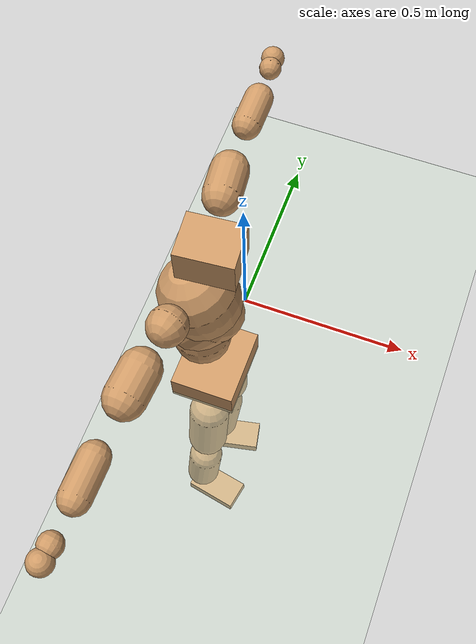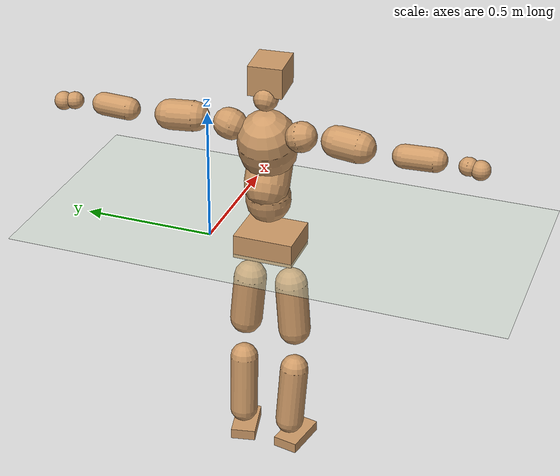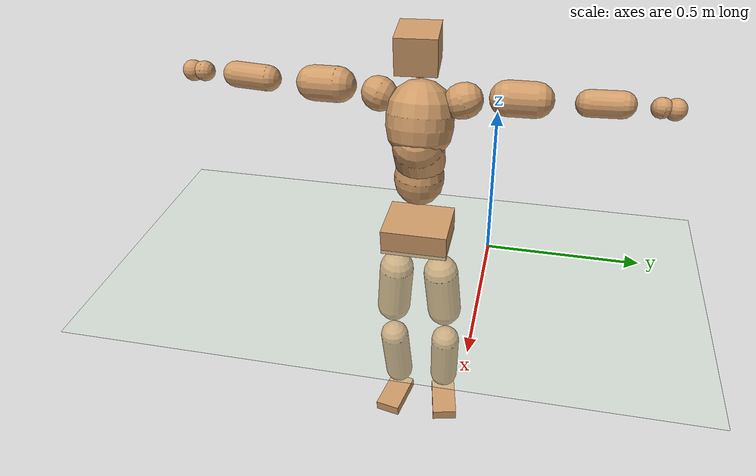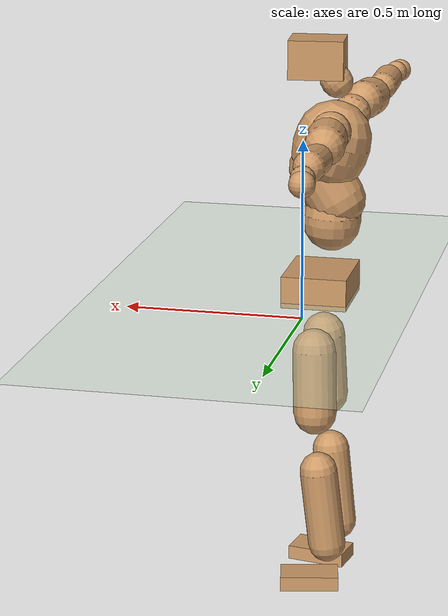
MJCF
<mujoco model="humanoid">
  <compiler coordinate="local" angle="radian"/>
  <default>
    <joint damping="0.0" armature="0.01" stiffness="0.0" limited="true"/>
    <geom conaffinity="1" condim="3" contype="7" margin="0.001" rgba="0.8 0.6 .4 1"/>
  </default>
  <asset>
    <texture type="skybox" builtin="gradient" rgb1=".4 .5 .6" rgb2="0 0 0" width="100" height="100"/>
    <texture builtin="flat" height="1278" mark="cross" markrgb="1 1 1" name="texgeom" random="0.01" rgb1="0.8 0.6 0.4" rgb2="0.8 0.6 0.4" type="cube" width="127"/>
    <texture builtin="checker" height="100" name="texplane" rgb1="0 0 0" rgb2="0.8 0.8 0.8" type="2d" width="100"/>
    <material name="MatPlane" reflectance="0.5" shininess="1" specular="1" texrepeat="60 60" texture="texplane"/>
    <material name="geom" texture="texgeom" texuniform="true"/>
  </asset>
  <worldbody>
    <light cutoff="100" diffuse="1 1 1" dir="-0 0 -1.3" directional="true" exponent="1" pos="0 0 1.3" specular=".1 .1 .1"/>
    <geom conaffinity="1" condim="3" name="floor" pos="0 0 0" rgba="0.8 0.9 0.8 1" size="100 100 .2" type="plane" material="MatPlane"/>
    <body name="Pelvis" pos="0.0003 -0.2436 0.0425">
      <freejoint name="Pelvis"/>
      <geom type="box" contype="1" conaffinity="1" density="5359.374851" pos="-0.0051 -0.0000 -0.0132" size="0.0931 0.1124 0.0453" quat="1.0000 0.0000 0.0000 0.0008" name="Pelvis"/>
      <body name="L_Hip" pos="-0.0002 0.0746 -0.0961">
        <joint name="L_Hip_x" type="hinge" pos="0 0 0" axis="1 0 0" stiffness="1600" damping="160" armature="0.02" range="-180.0000 180.0000"/>
        <joint name="L_Hip_y" type="hinge" pos="0 0 0" axis="0 1 0" stiffness="1600" damping="160" armature="0.02" range="-180.0000 180.0000"/>
        <joint name="L_Hip_z" type="hinge" pos="0 0 0" axis="0 0 1" stiffness="1600" damping="160" armature="0.02" range="-180.0000 180.0000"/>
        <geom type="capsule" contype="1" conaffinity="1" density="2040.816327" size="0.0618" fromto="-0.0033 0.0072 -0.0915 -0.0099 0.0218 -0.2757" name="L_Hip"/>
        <body name="L_Knee" pos="-0.0132 0.0291 -0.3672">
          <joint name="L_Knee_x" type="hinge" pos="0 0 0" axis="1 0 0" stiffness="1600" damping="160" armature="0.02" range="-180.0000 180.0000"/>
          <joint name="L_Knee_y" type="hinge" pos="0 0 0" axis="0 1 0" stiffness="1600" damping="160" armature="0.02" range="-180.0000 180.0000"/>
          <joint name="L_Knee_z" type="hinge" pos="0 0 0" axis="0 0 1" stiffness="1600" damping="160" armature="0.02" range="-180.0000 180.0000"/>
          <geom type="capsule" contype="1" conaffinity="1" density="1234.567901" size="0.0539" fromto="-0.0093 -0.0025 -0.0833 -0.0348 -0.0094 -0.3101" name="L_Knee"/>
          <body name="L_Ankle" pos="-0.0441 -0.0119 -0.3935">
            <joint name="L_Ankle_x" type="hinge" pos="0 0 0" axis="1 0 0" stiffness="1600" damping="160" armature="0.02" range="-180.0000 180.0000"/>
            <joint name="L_Ankle_y" type="hinge" pos="0 0 0" axis="0 1 0" stiffness="1600" damping="160" armature="0.02" range="-180.0000 180.0000"/>
            <joint name="L_Ankle_z" type="hinge" pos="0 0 0" axis="0 0 1" stiffness="1600" damping="160" armature="0.02" range="-180.0000 180.0000"/>
            <geom type="box" contype="1" conaffinity="1" density="1000.000026" pos="0.0593 0.0125 -0.0287" size="0.0842 0.0474 0.0211" quat="0.9946 0.0000 0.0000 0.1038" name="L_Ankle"/>
            <body name="L_Toe" pos="0.1185 0.025 -0.0574">
              <joint name="L_Toe_x" type="hinge" pos="0 0 0" axis="1 0 0" stiffness="1000" damping="100" armature="0.02" range="-180.0000 180.0000"/>
              <joint name="L_Toe_y" type="hinge" pos="0 0 0" axis="0 1 0" stiffness="1000" damping="100" armature="0.02" range="-180.0000 180.0000"/>
              <joint name="L_Toe_z" type="hinge" pos="0 0 0" axis="0 0 1" stiffness="1000" damping="100" armature="0.02" range="-180.0000 180.0000"/>
              <geom type="box" contype="1" conaffinity="1" density="8358731.800534" pos="0.0000 0.0000 0.0282" size="0.001 0.0024 0.001" quat="0.9939 0.0000 0.0000 0.1100" name="L_Toe"/>
            </body>
          </body>
        </body>
      </body>
      <body name="R_Hip" pos="0.0028 -0.0712 -0.0965">
        <joint name="R_Hip_x" type="hinge" pos="0 0 0" axis="1 0 0" stiffness="1600" damping="160" armature="0.02" range="-180.0000 180.0000"/>
        <joint name="R_Hip_y" type="hinge" pos="0 0 0" axis="0 1 0" stiffness="1600" damping="160" armature="0.02" range="-180.0000 180.0000"/>
        <joint name="R_Hip_z" type="hinge" pos="0 0 0" axis="0 0 1" stiffness="1600" damping="160" armature="0.02" range="-180.0000 180.0000"/>
        <geom type="capsule" contype="1" conaffinity="1" density="2040.816327" size="0.061" fromto="-0.0035 -0.0086 -0.0906 -0.0111 -0.0268 -0.2841" name="R_Hip"/>
        <body name="R_Knee" pos="-0.0147 -0.0354 -0.3746">
          <joint name="R_Knee_x" type="hinge" pos="0 0 0" axis="1 0 0" stiffness="1600" damping="160" armature="0.02" range="-180.0000 180.0000"/>
          <joint name="R_Knee_y" type="hinge" pos="0 0 0" axis="0 1 0" stiffness="1600" damping="160" armature="0.02" range="-180.0000 180.0000"/>
          <joint name="R_Knee_z" type="hinge" pos="0 0 0" axis="0 0 1" stiffness="1600" damping="160" armature="0.02" range="-180.0000 180.0000"/>
          <geom type="capsule" contype="1" conaffinity="1" density="1234.567901" size="0.0542" fromto="-0.0091 0.0030 -0.0836 -0.0338 0.0113 -0.3113" name="R_Knee"/>
          <body name="R_Ankle" pos="-0.0429 0.0144 -0.3949">
            <joint name="R_Ankle_x" type="hinge" pos="0 0 0" axis="1 0 0" stiffness="1600" damping="160" armature="0.02" range="-180.0000 180.0000"/>
            <joint name="R_Ankle_y" type="hinge" pos="0 0 0" axis="0 1 0" stiffness="1600" damping="160" armature="0.02" range="-180.0000 180.0000"/>
            <joint name="R_Ankle_z" type="hinge" pos="0 0 0" axis="0 0 1" stiffness="1600" damping="160" armature="0.02" range="-180.0000 180.0000"/>
            <geom type="box" contype="1" conaffinity="1" density="999.999954" pos="0.0612 -0.0115 -0.0239" size="0.0858 0.048 0.0206" quat="0.9957 0.0000 0.0000 -0.0926" name="R_Ankle"/>
            <body name="R_Toe" pos="0.1224 -0.023 -0.0478">
              <joint name="R_Toe_x" type="hinge" pos="0 0 0" axis="1 0 0" stiffness="1000" damping="100" armature="0.02" range="-180.0000 180.0000"/>
              <joint name="R_Toe_y" type="hinge" pos="0 0 0" axis="0 1 0" stiffness="1000" damping="100" armature="0.02" range="-180.0000 180.0000"/>
              <joint name="R_Toe_z" type="hinge" pos="0 0 0" axis="0 0 1" stiffness="1000" damping="100" armature="0.02" range="-180.0000 180.0000"/>
              <geom type="box" contype="1" conaffinity="1" density="8054708.81356" pos="0.0000 0.0000 0.0266" size="0.0009 0.0024 0.0012" quat="0.9965 0.0000 0.0000 -0.0833" name="R_Toe"/>
            </body>
          </body>
        </body>
      </body>
      <body name="Torso" pos="-0.0332 -0.0035 0.1131">
        <joint name="Torso_x" type="hinge" pos="0 0 0" axis="1 0 0" stiffness="2000" damping="200" armature="0.02" range="-180.0000 180.0000"/>
        <joint name="Torso_y" type="hinge" pos="0 0 0" axis="0 1 0" stiffness="2000" damping="200" armature="0.02" range="-180.0000 180.0000"/>
        <joint name="Torso_z" type="hinge" pos="0 0 0" axis="0 0 1" stiffness="2000" damping="200" armature="0.02" range="-180.0000 180.0000"/>
        <geom type="capsule" contype="1" conaffinity="1" density="2040.816327" size="0.0826" fromto="-0.0031 0.0025 0.0825 -0.0022 0.0018 0.0588" name="Torso"/>
        <body name="Spine" pos="-0.0053 0.0043 0.1412">
          <joint name="Spine_x" type="hinge" pos="0 0 0" axis="1 0 0" stiffness="2000" damping="200" armature="0.02" range="-180.0000 180.0000"/>
          <joint name="Spine_y" type="hinge" pos="0 0 0" axis="0 1 0" stiffness="2000" damping="200" armature="0.02" range="-180.0000 180.0000"/>
          <joint name="Spine_z" type="hinge" pos="0 0 0" axis="0 0 1" stiffness="2000" damping="200" armature="0.02" range="-180.0000 180.0000"/>
          <geom type="capsule" contype="1" conaffinity="1" density="2040.816327" size="0.083" fromto="0.0426 0.0027 0.0712 -0.0097 -0.0006 -0.0162" name="Spine"/>
          <body name="Chest" pos="0.0329 0.0021 0.055">
            <joint name="Chest_x" type="hinge" pos="0 0 0" axis="1 0 0" stiffness="2000" damping="200" armature="0.02" range="-180.0000 180.0000"/>
            <joint name="Chest_y" type="hinge" pos="0 0 0" axis="0 1 0" stiffness="2000" damping="200" armature="0.02" range="-180.0000 180.0000"/>
            <joint name="Chest_z" type="hinge" pos="0 0 0" axis="0 0 1" stiffness="2000" damping="200" armature="0.02" range="-180.0000 180.0000"/>
            <geom type="capsule" contype="1" conaffinity="1" density="2040.816327" size="0.1075" fromto="-0.0334 -0.0003 0.1022 -0.0209 -0.0002 0.0638" name="Chest"/>
            <body name="Neck" pos="-0.0656 0 0.2342">
              <joint name="Neck_x" type="hinge" pos="0 0 0" axis="1 0 0" stiffness="1000" damping="100" armature="0.02" range="-180.0000 180.0000"/>
              <joint name="Neck_y" type="hinge" pos="0 0 0" axis="0 1 0" stiffness="1000" damping="100" armature="0.02" range="-180.0000 180.0000"/>
              <joint name="Neck_z" type="hinge" pos="0 0 0" axis="0 0 1" stiffness="1000" damping="100" armature="0.02" range="-180.0000 180.0000"/>
              <geom type="capsule" contype="1" conaffinity="1" density="1000" size="0.0446" fromto="0.0282 0.0014 0.0345 0.0236 0.0012 0.0289" name="Neck"/>
              <body name="Head" pos="0.0517 0.0026 0.0634">
                <joint name="Head_x" type="hinge" pos="0 0 0" axis="1 0 0" stiffness="1000" damping="100" armature="0.02" range="-180.0000 180.0000"/>
                <joint name="Head_y" type="hinge" pos="0 0 0" axis="0 1 0" stiffness="1000" damping="100" armature="0.02" range="-180.0000 180.0000"/>
                <joint name="Head_z" type="hinge" pos="0 0 0" axis="0 0 1" stiffness="1000" damping="100" armature="0.02" range="-180.0000 180.0000"/>
                <geom type="box" contype="1" conaffinity="1" density="2249.99993" pos="0.0269 0.0023 0.0327" size="0.0768 0.0619 0.0541" quat="0.9991 0.0000 0.0000 0.0430" name="Head"/>
              </body>
            </body>
            <body name="L_Thorax" pos="-0.0455 0.0848 0.1337">
              <joint name="L_Thorax_x" type="hinge" pos="0 0 0" axis="1 0 0" stiffness="1000" damping="100" armature="0.02" range="-180.0000 180.0000"/>
              <joint name="L_Thorax_y" type="hinge" pos="0 0 0" axis="0 1 0" stiffness="1000" damping="100" armature="0.02" range="-180.0000 180.0000"/>
              <joint name="L_Thorax_z" type="hinge" pos="0 0 0" axis="0 0 1" stiffness="1000" damping="100" armature="0.02" range="-180.0000 180.0000"/>
              <geom type="capsule" contype="1" conaffinity="1" density="1000" size="0.0553" fromto="-0.0048 0.0521 0.0181 -0.0037 0.0402 0.0140" name="L_Thorax"/>
              <body name="L_Shoulder" pos="-0.0086 0.0923 0.0321">
                <joint name="L_Shoulder_x" type="hinge" pos="0 0 0" axis="1 0 0" stiffness="1000" damping="100" armature="0.02" range="-720.0000 720.0000"/>
                <joint name="L_Shoulder_y" type="hinge" pos="0 0 0" axis="0 1 0" stiffness="1000" damping="100" armature="0.02" range="-720.0000 720.0000"/>
                <joint name="L_Shoulder_z" type="hinge" pos="0 0 0" axis="0 0 1" stiffness="1000" damping="100" armature="0.02" range="-720.0000 720.0000"/>
                <geom type="capsule" contype="1" conaffinity="1" density="1000" size="0.0547" fromto="-0.0096 0.0841 -0.0028 -0.0196 0.1724 -0.0058" name="L_Shoulder"/>
                <body name="L_Elbow" pos="-0.0292 0.2565 -0.0087">
                  <joint name="L_Elbow_x" type="hinge" pos="0 0 0" axis="1 0 0" stiffness="1000" damping="100" armature="0.02" range="-720.0000 720.0000"/>
                  <joint name="L_Elbow_y" type="hinge" pos="0 0 0" axis="0 1 0" stiffness="1000" damping="100" armature="0.02" range="-720.0000 720.0000"/>
                  <joint name="L_Elbow_z" type="hinge" pos="0 0 0" axis="0 0 1" stiffness="1000" damping="100" armature="0.02" range="-720.0000 720.0000"/>
                  <geom type="capsule" contype="1" conaffinity="1" density="1000" size="0.0414" fromto="0.0004 0.0713 0.0026 0.0009 0.1693 0.0061" name="L_Elbow"/>
                  <body name="L_Wrist" pos="0.0013 0.2406 0.0087">
                    <joint name="L_Wrist_x" type="hinge" pos="0 0 0" axis="1 0 0" stiffness="600" damping="60" armature="0.02" range="-180.0000 180.0000"/>
                    <joint name="L_Wrist_y" type="hinge" pos="0 0 0" axis="0 1 0" stiffness="600" damping="60" armature="0.02" range="-180.0000 180.0000"/>
                    <joint name="L_Wrist_z" type="hinge" pos="0 0 0" axis="0 0 1" stiffness="600" damping="60" armature="0.02" range="-180.0000 180.0000"/>
                    <geom type="capsule" contype="1" conaffinity="1" density="1000" size="0.0317" fromto="-0.0066 0.0405 -0.0048 -0.0070 0.0424 -0.0050" name="L_Wrist"/>
                    <body name="L_Hand" pos="-0.0136 0.0829 -0.0098">
                      <joint name="L_Hand_x" type="hinge" pos="0 0 0" axis="1 0 0" stiffness="600" damping="60" armature="0.02" range="-180.0000 180.0000"/>
                      <joint name="L_Hand_y" type="hinge" pos="0 0 0" axis="0 1 0" stiffness="600" damping="60" armature="0.02" range="-180.0000 180.0000"/>
                      <joint name="L_Hand_z" type="hinge" pos="0 0 0" axis="0 0 1" stiffness="600" damping="60" armature="0.02" range="-180.0000 180.0000"/>
                      <geom type="sphere" contype="1" conaffinity="1" density="1000" size="0.0336" pos="0.0000 0.0000 0.0000" name="L_Hand"/>
                    </body>
                  </body>
                </body>
              </body>
            </body>
            <body name="R_Thorax" pos="-0.0519 -0.086 0.1302">
              <joint name="R_Thorax_x" type="hinge" pos="0 0 0" axis="1 0 0" stiffness="1000" damping="100" armature="0.02" range="-180.0000 180.0000"/>
              <joint name="R_Thorax_y" type="hinge" pos="0 0 0" axis="0 1 0" stiffness="1000" damping="100" armature="0.02" range="-180.0000 180.0000"/>
              <joint name="R_Thorax_z" type="hinge" pos="0 0 0" axis="0 0 1" stiffness="1000" damping="100" armature="0.02" range="-180.0000 180.0000"/>
              <geom type="capsule" contype="1" conaffinity="1" density="1000" size="0.0546" fromto="-0.0065 -0.0513 0.0175 -0.0058 -0.0461 0.0158" name="R_Thorax"/>
              <body name="R_Shoulder" pos="-0.0123 -0.0974 0.0333">
                <joint name="R_Shoulder_x" type="hinge" pos="0 0 0" axis="1 0 0" stiffness="1000" damping="100" armature="0.02" range="-720.0000 720.0000"/>
                <joint name="R_Shoulder_y" type="hinge" pos="0 0 0" axis="0 1 0" stiffness="1000" damping="100" armature="0.02" range="-720.0000 720.0000"/>
                <joint name="R_Shoulder_z" type="hinge" pos="0 0 0" axis="0 0 1" stiffness="1000" damping="100" armature="0.02" range="-720.0000 720.0000"/>
                <geom type="capsule" contype="1" conaffinity="1" density="1000" size="0.0563" fromto="-0.0074 -0.0859 -0.0044 -0.0145 -0.1688 -0.0086" name="R_Shoulder"/>
                <body name="R_Elbow" pos="-0.0219 -0.2547 -0.0129">
                  <joint name="R_Elbow_x" type="hinge" pos="0 0 0" axis="1 0 0" stiffness="1000" damping="100" armature="0.02" range="-720.0000 720.0000"/>
                  <joint name="R_Elbow_y" type="hinge" pos="0 0 0" axis="0 1 0" stiffness="1000" damping="100" armature="0.02" range="-720.0000 720.0000"/>
                  <joint name="R_Elbow_z" type="hinge" pos="0 0 0" axis="0 0 1" stiffness="1000" damping="100" armature="0.02" range="-720.0000 720.0000"/>
                  <geom type="capsule" contype="1" conaffinity="1" density="1000" size="0.0418" fromto="-0.0006 -0.0717 0.0032 -0.0014 -0.1785 0.0080" name="R_Elbow"/>
                  <body name="R_Wrist" pos="-0.002 -0.2502 0.0112">
                    <joint name="R_Wrist_x" type="hinge" pos="0 0 0" axis="1 0 0" stiffness="600" damping="60" armature="0.02" range="-180.0000 180.0000"/>
                    <joint name="R_Wrist_y" type="hinge" pos="0 0 0" axis="0 1 0" stiffness="600" damping="60" armature="0.02" range="-180.0000 180.0000"/>
                    <joint name="R_Wrist_z" type="hinge" pos="0 0 0" axis="0 0 1" stiffness="600" damping="60" armature="0.02" range="-180.0000 180.0000"/>
                    <geom type="capsule" contype="1" conaffinity="1" density="1000" size="0.0326" fromto="-0.0053 -0.0412 -0.0036 -0.0055 -0.0432 -0.0037" name="R_Wrist"/>
                    <body name="R_Hand" pos="-0.0108 -0.0843 -0.0073">
                      <joint name="R_Hand_x" type="hinge" pos="0 0 0" axis="1 0 0" stiffness="600" damping="60" armature="0.02" range="-180.0000 180.0000"/>
                      <joint name="R_Hand_y" type="hinge" pos="0 0 0" axis="0 1 0" stiffness="600" damping="60" armature="0.02" range="-180.0000 180.0000"/>
                      <joint name="R_Hand_z" type="hinge" pos="0 0 0" axis="0 0 1" stiffness="600" damping="60" armature="0.02" range="-180.0000 180.0000"/>
                      <geom type="sphere" contype="1" conaffinity="1" density="1000" size="0.0340" pos="0.0000 0.0000 0.0000" name="R_Hand"/>
                    </body>
                  </body>
                </body>
              </body>
            </body>
          </body>
        </body>
      </body>
    </body>
  </worldbody>
  <actuator>
    <motor name="L_Hip_x" joint="L_Hip_x" gear="500"/>
    <motor name="L_Hip_y" joint="L_Hip_y" gear="500"/>
    <motor name="L_Hip_z" joint="L_Hip_z" gear="500"/>
    <motor name="L_Knee_x" joint="L_Knee_x" gear="500"/>
    <motor name="L_Knee_y" joint="L_Knee_y" gear="500"/>
    <motor name="L_Knee_z" joint="L_Knee_z" gear="500"/>
    <motor name="L_Ankle_x" joint="L_Ankle_x" gear="500"/>
    <motor name="L_Ankle_y" joint="L_Ankle_y" gear="500"/>
    <motor name="L_Ankle_z" joint="L_Ankle_z" gear="500"/>
    <motor name="L_Toe_x" joint="L_Toe_x" gear="500"/>
    <motor name="L_Toe_y" joint="L_Toe_y" gear="500"/>
    <motor name="L_Toe_z" joint="L_Toe_z" gear="500"/>
    <motor name="R_Hip_x" joint="R_Hip_x" gear="500"/>
    <motor name="R_Hip_y" joint="R_Hip_y" gear="500"/>
    <motor name="R_Hip_z" joint="R_Hip_z" gear="500"/>
    <motor name="R_Knee_x" joint="R_Knee_x" gear="500"/>
    <motor name="R_Knee_y" joint="R_Knee_y" gear="500"/>
    <motor name="R_Knee_z" joint="R_Knee_z" gear="500"/>
    <motor name="R_Ankle_x" joint="R_Ankle_x" gear="500"/>
    <motor name="R_Ankle_y" joint="R_Ankle_y" gear="500"/>
    <motor name="R_Ankle_z" joint="R_Ankle_z" gear="500"/>
    <motor name="R_Toe_x" joint="R_Toe_x" gear="500"/>
    <motor name="R_Toe_y" joint="R_Toe_y" gear="500"/>
    <motor name="R_Toe_z" joint="R_Toe_z" gear="500"/>
    <motor name="Torso_x" joint="Torso_x" gear="500"/>
    <motor name="Torso_y" joint="Torso_y" gear="500"/>
    <motor name="Torso_z" joint="Torso_z" gear="500"/>
    <motor name="Spine_x" joint="Spine_x" gear="500"/>
    <motor name="Spine_y" joint="Spine_y" gear="500"/>
    <motor name="Spine_z" joint="Spine_z" gear="500"/>
    <motor name="Chest_x" joint="Chest_x" gear="500"/>
    <motor name="Chest_y" joint="Chest_y" gear="500"/>
    <motor name="Chest_z" joint="Chest_z" gear="500"/>
    <motor name="Neck_x" joint="Neck_x" gear="500"/>
    <motor name="Neck_y" joint="Neck_y" gear="500"/>
    <motor name="Neck_z" joint="Neck_z" gear="500"/>
    <motor name="Head_x" joint="Head_x" gear="500"/>
    <motor name="Head_y" joint="Head_y" gear="500"/>
    <motor name="Head_z" joint="Head_z" gear="500"/>
    <motor name="L_Thorax_x" joint="L_Thorax_x" gear="500"/>
    <motor name="L_Thorax_y" joint="L_Thorax_y" gear="500"/>
    <motor name="L_Thorax_z" joint="L_Thorax_z" gear="500"/>
    <motor name="L_Shoulder_x" joint="L_Shoulder_x" gear="500"/>
    <motor name="L_Shoulder_y" joint="L_Shoulder_y" gear="500"/>
    <motor name="L_Shoulder_z" joint="L_Shoulder_z" gear="500"/>
    <motor name="L_Elbow_x" joint="L_Elbow_x" gear="500"/>
    <motor name="L_Elbow_y" joint="L_Elbow_y" gear="500"/>
    <motor name="L_Elbow_z" joint="L_Elbow_z" gear="500"/>
    <motor name="L_Wrist_x" joint="L_Wrist_x" gear="500"/>
    <motor name="L_Wrist_y" joint="L_Wrist_y" gear="500"/>
    <motor name="L_Wrist_z" joint="L_Wrist_z" gear="500"/>
    <motor name="L_Hand_x" joint="L_Hand_x" gear="500"/>
    <motor name="L_Hand_y" joint="L_Hand_y" gear="500"/>
    <motor name="L_Hand_z" joint="L_Hand_z" gear="500"/>
    <motor name="R_Thorax_x" joint="R_Thorax_x" gear="500"/>
    <motor name="R_Thorax_y" joint="R_Thorax_y" gear="500"/>
    <motor name="R_Thorax_z" joint="R_Thorax_z" gear="500"/>
    <motor name="R_Shoulder_x" joint="R_Shoulder_x" gear="500"/>
    <motor name="R_Shoulder_y" joint="R_Shoulder_y" gear="500"/>
    <motor name="R_Shoulder_z" joint="R_Shoulder_z" gear="500"/>
    <motor name="R_Elbow_x" joint="R_Elbow_x" gear="500"/>
    <motor name="R_Elbow_y" joint="R_Elbow_y" gear="500"/>
    <motor name="R_Elbow_z" joint="R_Elbow_z" gear="500"/>
    <motor name="R_Wrist_x" joint="R_Wrist_x" gear="500"/>
    <motor name="R_Wrist_y" joint="R_Wrist_y" gear="500"/>
    <motor name="R_Wrist_z" joint="R_Wrist_z" gear="500"/>
    <motor name="R_Hand_x" joint="R_Hand_x" gear="500"/>
    <motor name="R_Hand_y" joint="R_Hand_y" gear="500"/>
    <motor name="R_Hand_z" joint="R_Hand_z" gear="500"/>
  </actuator>
  <contact>
    <exclude body1="Torso" body2="Chest"/>
    <exclude body1="Head" body2="Chest"/>
    <exclude body1="R_Knee" body2="R_Toe"/>
    <exclude body1="R_Knee" body2="L_Ankle"/>
    <exclude body1="R_Knee" body2="L_Toe"/>
    <exclude body1="L_Knee" body2="L_Toe"/>
    <exclude body1="L_Knee" body2="R_Ankle"/>
    <exclude body1="L_Knee" body2="R_Toe"/>
    <exclude body1="L_Shoulder" body2="Chest"/>
    <exclude body1="R_Shoulder" body2="Chest"/>
  </contact>
  <sensor/>
  <size njmax="700" nconmax="700"/>
</mujoco>
